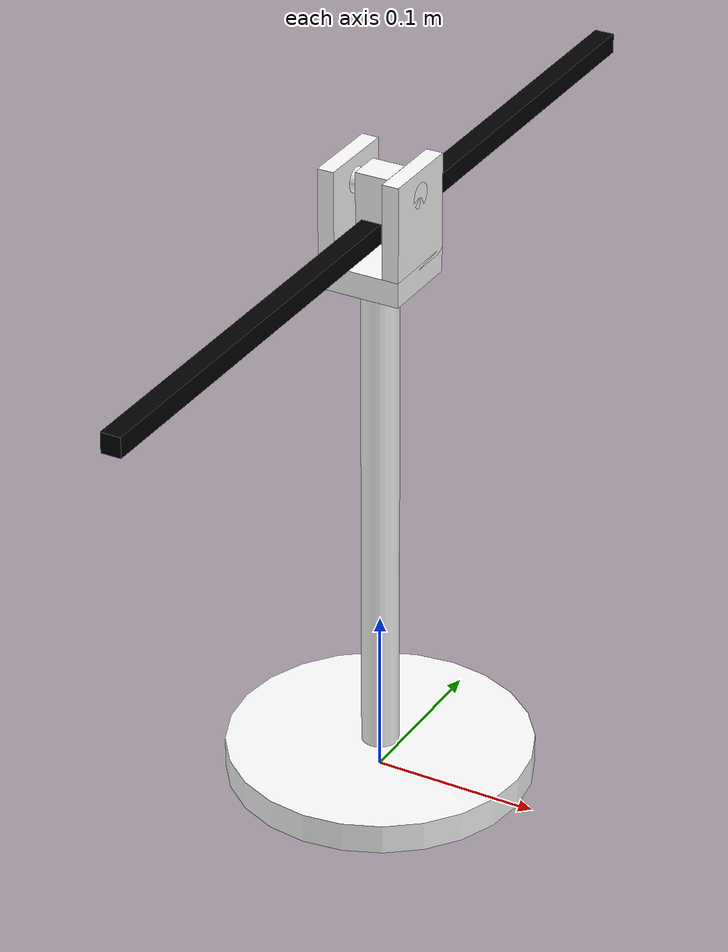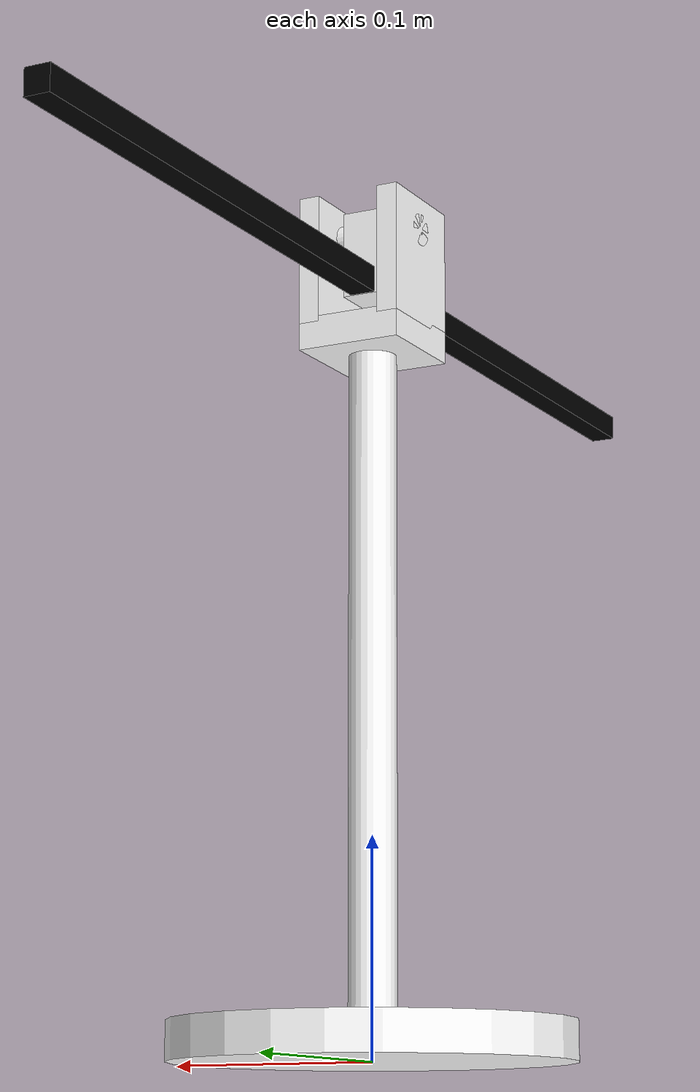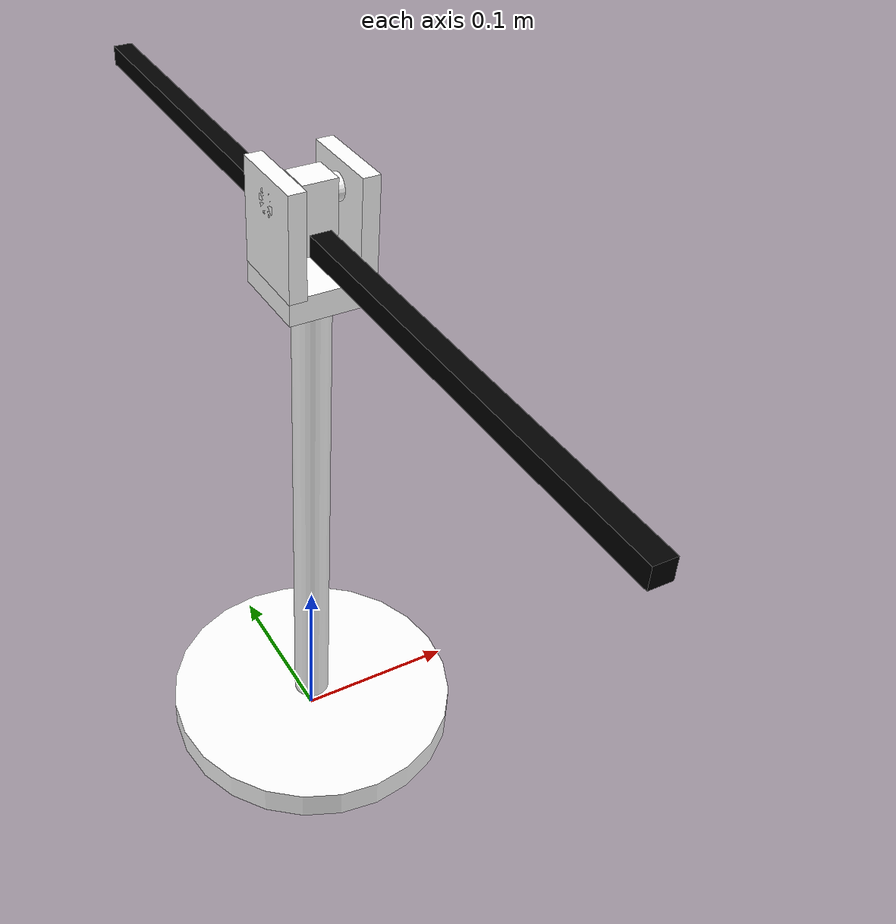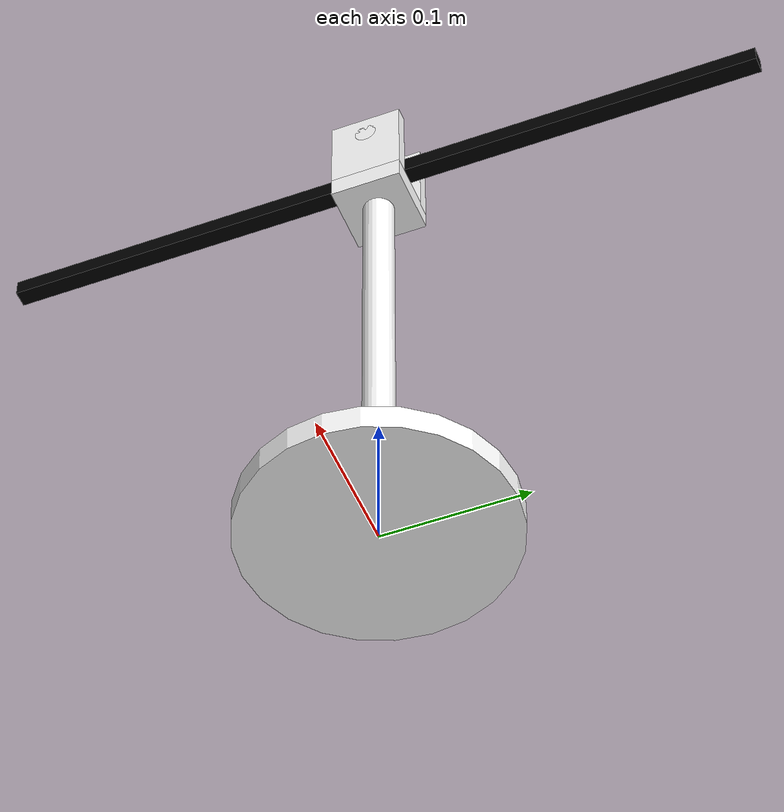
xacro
<?xml version="1.0"?>
<robot xmlns:xacro="http://www.ros.org/wiki/xacro" >

    <xacro:include filename="inertial_macros.xacro"/>

    <material name="white">
        <color rgba="1.0 1.0 1.0 1.0"/>
    </material>

    <material name="black">
        <color rgba="0.0 0.0 0.0 1.0"/>
    </material>

    <material name="gray">
        <color rgba="0.5 0.5 0.5 1.0"/>
    </material>

    <material name="blue">
        <color rgba="0.0 0.0 1.0 0.5"/>
    </material>

    <material name="red">
        <color rgba="1 0 0 1"/>
    </material>

    <link name="base_link">

    </link>
    <!-- Base Plate -->
    <joint name="base_plate_joint" type="fixed">
        <origin xyz="0.0 0.0 0.0091" rpy="0.0 0.0 0.0"/>
        <parent link="base_link"/>
        <child link="base_plate_link"/>
    </joint>

    <link name="base_plate_link">
        <visual>
            <geometry>
                <cylinder radius="0.091" length="0.0182"/>
            </geometry>
            <material name="white"/>
        </visual>
        <collision>
            <geometry>
                <cylinder radius="0.091" length="0.0182"/>
            </geometry>
        </collision>
        <xacro:inertial_cylinder mass = "1.278403083" length="0.0182" radius="0.091">
            <origin xyz = "0 0 0" rpy = "0 0 0"/>
        </xacro:inertial_cylinder>
    </link>

    <gazebo reference="base_plate_link">
        <material>Gazebo/White</material>
    </gazebo>

    <!-- Base Plate Done -->

    <!-- Vertical Rod Support -->
    <joint name="support_base_joint" type="fixed">
        <origin xyz="0.0 0.0 0.16" rpy="0.0 0.0 0.0"/>
        <parent link="base_plate_link"/>
        <child link="support_base_link"/>
    </joint>

    <link name="support_base_link">
        <visual>
            <origin xyz="0.0 0.0 0.0" rpy="0.0 0.0 0.0"/>
            <geometry>
                <cylinder radius="0.011" length="0.32"/>
            </geometry>
            <material name="white"/>
        </visual>
        <collision>
            <geometry>
                <cylinder radius="0.011" length="0.32"/>
            </geometry>
        </collision>
        <xacro:inertial_cylinder mass = "0.328434662377" length="0.32" radius="0.091">
            <origin xyz="0.0 0.0 0.0" rpy="0.0 0.0 0.0"/>
        </xacro:inertial_cylinder>
    </link>

    <gazebo reference="support_base_link">
        <material>Gazebo/White</material>
    </gazebo>

    <!-- Vertical Rod is done -->

    <!-- U shape base -->
    <joint name="u_shape_base" type="continuous">
        <parent link="support_base_link"/>
        <child link="u_shape_base_link"/>
        <origin xyz="0.0 0.0 0.16" rpy="0.0 0.0 0.0"/>

        <axis xyz="0 0 1"/>
    </joint>

    <link name="u_shape_base_link">
        <visual>
            <origin xyz="0.0 0.0 0.0" rpy="0.0 0.0 0.0"/>
            <geometry>
                <box size="0.05 0.05 0.015"/>
            </geometry>
            <material name="white"/>
        </visual>

        <collision>
            <geometry>
                <box size="0.05 0.05 0.015"/>
            </geometry>
        </collision>

        <xacro:inertial_box mass= "0.10125" x="0.05" y="0.05" z="0.015">
            <origin xyz="0 0 0" rpy="0 0 0"/>
        </xacro:inertial_box>
    </link>

    <gazebo reference="u_shape_base_link">
        <material>Gazebo/White</material>
    </gazebo>

    <!-- U Shape Pillars -->
    <joint name="u_shape_pillar_r_joint" type="fixed">
        <parent link="u_shape_base_link"/>
        <child link="u_shape_pillar_r_link"/>
        <origin xyz="0.02 0.0 0.005" rpy="0.0 0.0 0.0"/>
    </joint>

    <link name="u_shape_pillar_r_link">
        <visual>
            <origin xyz="0.0 0.0 0.03" rpy="0.0 0.0 0.0"/>
            <geometry>
                <box size="0.01 0.05 0.06"/>
            </geometry>
            <material name="white"/>
        </visual>

        <collision>
            <origin xyz="0.0 0.0 0.03" rpy="0.0 0.0 0.0"/>
            <geometry>
                <box size="0.01 0.05 0.06"/>
            </geometry>
        </collision>

        <xacro:inertial_box mass= "0.081" x="0.01" y="0.05" z="0.06">
            <origin xyz="0 0 0.3" rpy="0 0 0"/>
        </xacro:inertial_box>
    </link>

    <gazebo reference="u_shape_pillar_r_link">
        <material>Gazebo/White</material>
    </gazebo>

    <joint name="u_shape_pillar_l_joint" type="fixed">
        <parent link="u_shape_base_link"/>
        <child link="u_shape_pillar_l_link"/>
        <origin xyz="-0.02 0.0 0.005" rpy="0.0 0.0 0.0"/>
    </joint>

    <link name="u_shape_pillar_l_link">
        <visual>
            <origin xyz="0.0 0.0 0.03" rpy="0.0 0.0 0.0"/>
            <geometry>
                <box size="0.01 0.05 0.06"/>
            </geometry>
            <material name="white"/>
        </visual>

        <collision>
            <origin xyz="0.0 0.0 0.03" rpy="0.0 0.0 0.0"/>
            <geometry>
                <box size="0.01 0.05 0.06"/>
            </geometry>
        </collision>

        <xacro:inertial_box mass= "0.081" x="0.01" y="0.05" z="0.06">
            <origin xyz="0 0 0.3" rpy="0 0 0"/>
        </xacro:inertial_box>
    </link>

    <gazebo reference="u_shape_pillar_l_link">
        <material>Gazebo/White</material>
    </gazebo>

    <!-- pillars and fork done -->

    <!-- Pin Connecting both pillars -->
    <joint name="pillar_connecting_joint" type="fixed">
        <parent link="u_shape_base_link"/>
        <child link="pillar_connecting_link"/>
        <origin xyz="0.0 0.0 0.05" rpy="0.0 ${pi/2} 0.0"/>
    </joint>

    <link name="pillar_connecting_link">
        <visual>
            <origin xyz="0.0 0.0 0.0" rpy="0.0 0.0 0.0"/>
            <geometry>
                <cylinder radius="0.0075" length="0.05"/>
            </geometry>
            <material name="white"/>
        </visual>

        <collision>
            <geometry>
                <cylinder radius="0.0075" length="0.05"/>
            </geometry>
        </collision>

        <xacro:inertial_cylinder mass= "0.023856469" radius="0.0075" length="0.05">
            <origin xyz="0 0 0.0" rpy="0 0 0"/>
        </xacro:inertial_cylinder>
    </link>

    <gazebo reference="pillar_connecting_link">
        <material>Gazebo/White</material>
    </gazebo>

    <!-- Connecting Pin Done -->

    <!-- Hinge at the Pin -->
    <joint name="pin_hinge_joint" type="revolute">
        <parent link="pillar_connecting_link"/>
        <child link="pin_hinge_link"/>
        <origin xyz="0.0 0.0 0.0" rpy="0.0 0.0 ${pi/2}"/>
        <axis xyz="0.0 0.0 1"/>
        <limit lower="-0.39" upper="0.39" effort="0.0" velocity="0.0"/>
    </joint>

    <link name="pin_hinge_link">
        <visual>
            <origin xyz="0.0 -0.01 0.0" rpy="${pi/2} 0.0 0.0"/>
            <geometry>
                <box size="0.02 0.02 0.04"/>
            </geometry>
            <material name="white"/>
        </visual>

        <collision>
            <geometry>
                <box size="0.02 0.02 0.04"/>
            </geometry>
        </collision>

        <xacro:inertial_box mass= "0.0432" x="0.02" y="0.02" z="0.04">
            <origin xyz="0 0 0" rpy="0 0 0"/>
        </xacro:inertial_box>
    </link>

    <gazebo reference="pin_hinge_link">
        <material>Gazebo/White</material>
    </gazebo>
    <!-- Main Beam Link -->

    <joint name="beam_joint" type="fixed">
        <parent link="pin_hinge_link"/>
        <child link="beam_link"/>
        <origin xyz="0.0 -0.02375 0.0" rpy="0.0 0.0 ${pi/2}"/>
    </joint>

    <link name="beam_link">
        <visual>
            <origin xyz="0.0 0.0 0.0" rpy="0.0 0.0 0.0"/>
            <geometry>
                <box size="0.012 0.55 0.012"/>
            </geometry>
            <material name="black"/>
        </visual>

        <collision>
            <geometry>
                <box size="0.012 0.55 0.012"/>
            </geometry>
        </collision>

        <xacro:inertial_box mass= "0.21384" x="0.012" y="0.55" z="0.012">
            <origin xyz="0 0 0" rpy="0 0 0"/>
        </xacro:inertial_box>
    </link>

    <gazebo reference="beam_link">
        <material>Gazebo/Black</material>
    </gazebo>
</robot>
